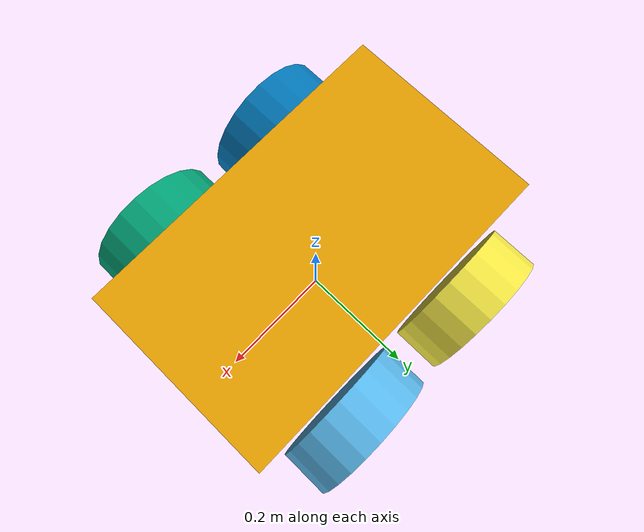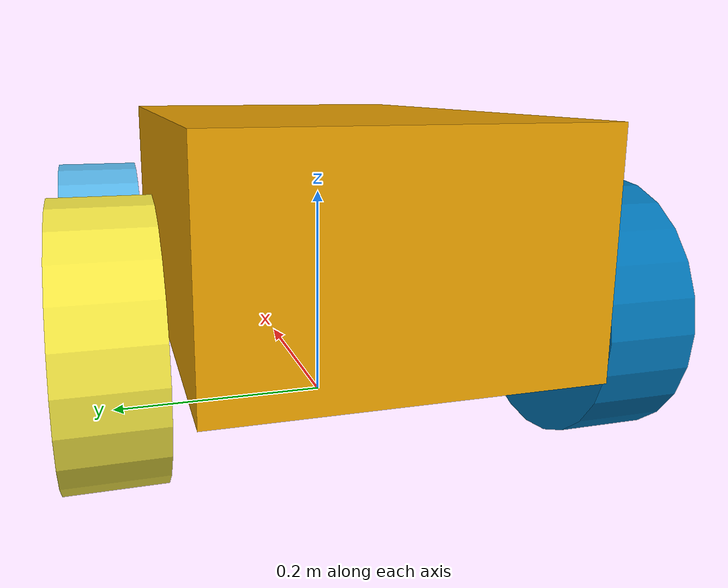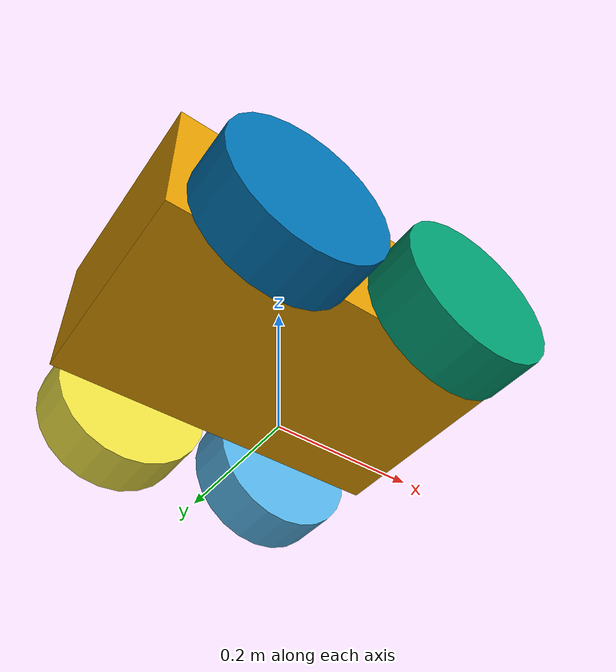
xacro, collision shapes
<?xml version="1.0"?>

<robot xmlns:sensor="http://playerstage.sourceforge.net/gazebo/xmlschema/#sensor"
  xmlns:controller="http://playerstage.sourceforge.net/gazebo/xmlschema/#controller"
  xmlns:interface="http://playerstage.sourceforge.net/gazebo/xmlschema/#interface"
  xmlns:xacro="http://ros.org/wiki/xacro"
  >

  <!-- Chassis -->
  <link name="base_link">
    <inertial>
      <mass value="14.0"/>
      <origin xyz="0 0 0.177"/>
      <inertia ixx="0.14711667" ixy="0.0" ixz="0.0"
        iyy="0.334951167" iyz="0.0"
        izz="0.3978345"/>
    </inertial>
    <visual name="base_visual">
      <origin xyz="0 0 0.18" rpy="0 0 0"/>
        <geometry name="pioneer_geom">
            <mesh filename="package://p3at_description/meshes/p3at_meshes/chassis.dae"/>
        </geometry>
    </visual>
    <collision>
      <origin xyz="0 0 0.18" rpy="0 0 0"/>
      <geometry>
        <box size="0.501 0.3 0.19"/>
      </geometry>
    </collision>

  </link>

  <link name="p3at_front_left_wheel">
    <inertial>
      <mass value="1.5"/>
      <origin xyz="0 0 0"/>
      <inertia ixx="0.005240625" ixy="0" ixz="0"
        iyy="0.005240625" iyz="0" izz="0.009075"/>
    </inertial>
    <visual name="visual">
      <origin xyz="0 0 0" rpy="0 0 0"/>
      <geometry name="geom">
        <mesh filename="package://p3at_description/meshes/p3at_meshes/wheel.dae"/>
      </geometry>
    </visual>
    <collision>
      <origin xyz="0 0 0" rpy="0 0 0"/>
      <geometry>
        <cylinder radius="0.110" length="0.075"/>
      </geometry>
    </collision>
  </link>

  <joint name="p3at_front_left_wheel_joint" type="continuous">
    <axis xyz="0 0 -1"/>
    <limit effort="100" velocity="100" />
    <joint_properties damping="0.7"/>
    <origin xyz="0.125 0.2010 0.11" rpy="1.5707 0 0"/>
    <parent link="base_link"/>
    <child link="p3at_front_left_wheel"/>
  </joint>

  <link name="p3at_front_right_wheel">
    <inertial>
      <mass value="1.5"/>
      <origin xyz="0 0 0"/>
      <inertia ixx="0.005240625" ixy="0" ixz="0"
        iyy="0.005240625" iyz="0" izz="0.009075"/>
    </inertial>
    <visual name="visual">
      <origin xyz="0 0 0" rpy="0 0 0"/>
      <geometry name="geom">
        <mesh filename="package://p3at_description/meshes/p3at_meshes/wheel.dae"/>
      </geometry>
    </visual>
    <collision>
      <origin xyz="0 0 0" rpy="0 0 0"/>
      <geometry>
        <cylinder radius="0.110" length="0.075"/>
      </geometry>
    </collision>
  </link>

  <joint name="p3at_front_right_wheel_joint" type="continuous">
    <axis xyz="0 0 -1"/>
    <limit effort="100" velocity="100" />
    <joint_properties damping="0.7"/>
    <origin xyz="0.125 -0.2010 0.11" rpy="1.5707 0 0"/>
    <parent link="base_link"/>
    <child link="p3at_front_right_wheel"/>
  </joint>

  <link name="p3at_rear_left_wheel">
    <inertial>
      <mass value="1.5"/>
      <origin xyz="0 0 0"/>
      <inertia ixx="0.005240625" ixy="0" ixz="0"
        iyy="0.005240625" iyz="0" izz="0.009075"/>
    </inertial>
    <visual name="visual">
      <origin xyz="0 0 0" rpy="0 0 0"/>
      <geometry name="geom">
        <mesh filename="package://p3at_description/meshes/p3at_meshes/wheel.dae"/>
      </geometry>
    </visual>
    <collision>
      <origin xyz="0 0 0" rpy="0 0 0"/>
      <geometry>
        <cylinder radius="0.110" length="0.075"/>
      </geometry>
    </collision>
  </link>

  <joint name="p3at_rear_left_wheel_joint" type="continuous">
    <axis xyz="0 0 -1"/>
    <limit effort="100" velocity="100" />
    <joint_properties damping="0.7"/>
    <origin xyz="-0.125 0.2010 0.11" rpy="1.5707 0 0"/>
    <parent link="base_link"/>
    <child link="p3at_rear_left_wheel"/>
  </joint>

  <link name="p3at_rear_right_wheel">
    <inertial>
      <mass value="1.5"/>
      <origin xyz="0 0 0"/>
      <inertia ixx="0.005240625" ixy="0" ixz="0"
        iyy="0.005240625" iyz="0" izz="0.009075"/>
    </inertial>
    <visual name="visual">
      <origin xyz="0 0 0" rpy="0 0 0"/>
      <geometry name="geom">
        <mesh filename="package://p3at_description/meshes/p3at_meshes/wheel.dae"/>
      </geometry>
    </visual>
    <collision>
      <origin xyz="0 0 0" rpy="0 0 0"/>
      <geometry>
        <cylinder radius="0.110" length="0.075"/>
      </geometry>
    </collision>
  </link>

  <joint name="p3at_rear_right_wheel_joint" type="continuous">
    <axis xyz="0 0 -1"/>
    <limit effort="100" velocity="100" />
    <joint_properties damping="0.7"/>
    <origin xyz="-0.125 -0.2010 0.11" rpy="1.5707 0 0"/>
    <parent link="base_link"/>
    <child link="p3at_rear_right_wheel"/>
  </joint>

  <!-- IMU sensor -->

  <gazebo>
    <plugin name="skid_steer_drive_controller" filename="libgazebo_ros_skid_steer_drive.so">
      <updateRate>100.0</updateRate>
      <leftFrontJoint>p3at_front_left_wheel_joint</leftFrontJoint>
      <rightFrontJoint>p3at_front_right_wheel_joint</rightFrontJoint>
      <leftRearJoint>p3at_rear_left_wheel_joint</leftRearJoint>
      <rightRearJoint>p3at_rear_right_wheel_joint</rightRearJoint>
      <wheelSeparation>0.4</wheelSeparation>
      <wheelDiameter>0.215</wheelDiameter>
      <robotBaseFrame>base_link</robotBaseFrame>
      <torque>200</torque>
      <commandTopic>cmd_vel</commandTopic>
      <odometryTopic>odom</odometryTopic>
      <odometryFrame>odom</odometryFrame>
      <broadcastTF>true</broadcastTF> <!-- publishing odom by gazebo, if set true -->
    </plugin>
  </gazebo>

    <!-- todo : set robot_name argument instead of "sos1" -->

  <gazebo>
    <plugin name="hector_imu" filename="libhector_gazebo_ros_imu.so">
      <robotNamespace>/sos1</robotNamespace>
      <updateRate>50.0</updateRate>
      <bodyName>base_link</bodyName>
      <topicName>imu/data</topicName>
      <frameId>sos1/base_link</frameId>

      <accelDrift>0.005 0.005 0.005</accelDrift>
      <accelGaussianNoise>0.005 0.005 0.005</accelGaussianNoise>
      <rateDrift>0.005 0.005 0.005 </rateDrift>
      <rateGaussianNoise>0.005 0.005 0.005 </rateGaussianNoise>
      <headingDrift>0.005</headingDrift>
      <headingGaussianNoise>0.005</headingGaussianNoise>
    </plugin>

    <plugin name="hector_gps" filename="libhector_gazebo_ros_gps.so">
      <robotNamespace>/sos1</robotNamespace>
      <updateRate>50.0</updateRate>
      <bodyName>base_link</bodyName>
      <frameId>map</frameId>
      <topicName>gps/fix</topicName>
      <velocityTopicName>gps/fix_velocity</velocityTopicName>
    </plugin>
  </gazebo>

</robot>
